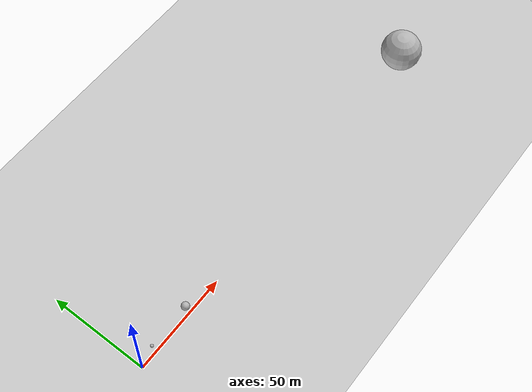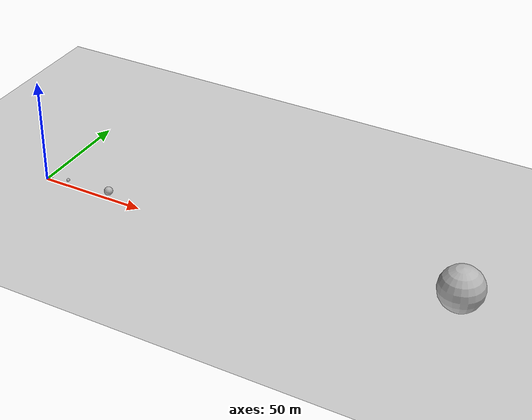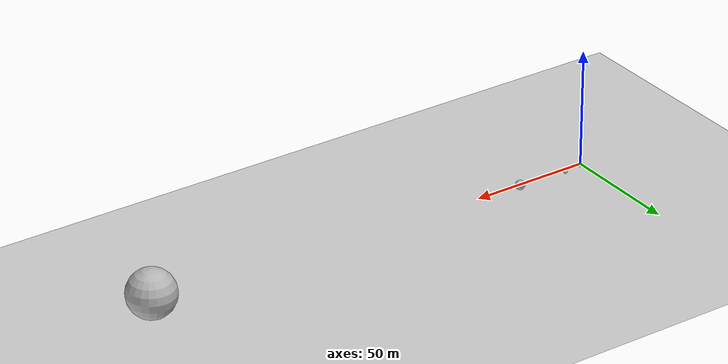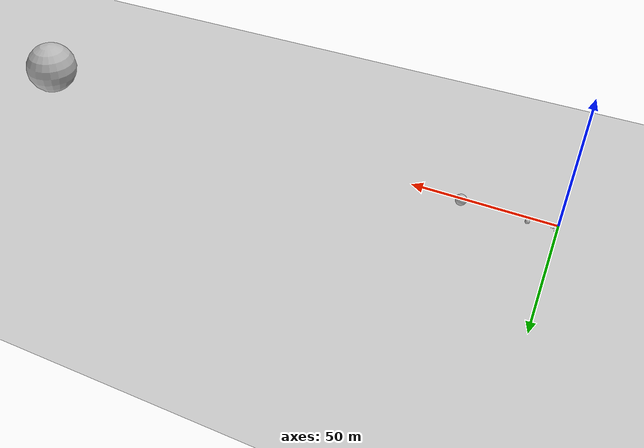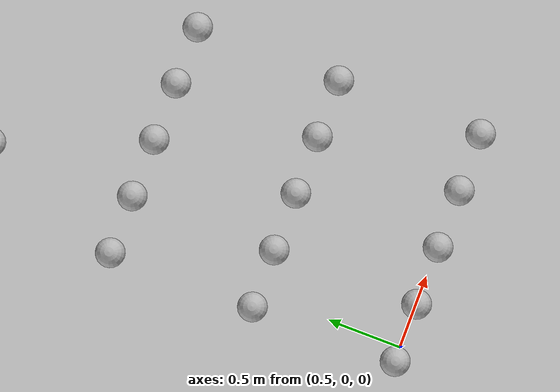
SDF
<?xml version="1.0" ?>
<!-- this file was generated using embedded ruby -->

<sdf version="1.5">
  <world name="default">
    <physics type="ode">
      <ode>
        <solver>
          <type>quick</type>
          <iters>1000</iters>
          <precon_iters>0</precon_iters>
          <sor>1.0</sor>
        </solver>
        <constraints>
          <cfm>0.000000</cfm>
          <erp>0.200000</erp>
          <contact_max_correcting_vel>1000.0</contact_max_correcting_vel>
          <contact_surface_layer>0.0</contact_surface_layer>
        </constraints>
      </ode>
    </physics>
    <gui>
      <camera name="user_camera">
        <pose>-4 1.5 1.9 0 0.17 -0.014</pose>
      </camera>
    </gui>
    <include>
      <uri>model://ground_plane</uri>
    </include>
    <include>
      <uri>model://sun</uri>
    </include>

    <model name='sphere_mass_1'>
      <allow_auto_disable>0</allow_auto_disable>
      <pose>0.4 0 0.1  0 0 0</pose>
      <link name="link">
        <inertial>
          <mass>0.41887902047863923</mass>
          <inertia>
            <ixx>0.0016755160819145573</ixx>
            <iyy>0.0016755160819145573</iyy>
            <izz>0.0016755160819145573</izz>
            <ixy>0.0</ixy>
            <ixz>0.0</ixz>
            <iyz>0.0</iyz>
          </inertia>
        </inertial>
        <collision name="collision">
          <geometry>
            <sphere>
              <radius>0.1</radius>
            </sphere>
          </geometry>
          <surface>
            <friction>
              <torsional>
                <coefficient>0.005</coefficient>
              </torsional>
            </friction>
            <contact>
              <ode>
                <kp>500000</kp>
                <max_vel>10000</max_vel>
              </ode>
            </contact>
          </surface>
        </collision>
        <visual name="visual">
          <geometry>
            <sphere>
              <radius>0.1</radius>
            </sphere>
          </geometry>
          <material>
            <script>
              <uri>file://media/materials/scripts/gazebo.material</uri>
              <name>Gazebo/CoM</name>
            </script>
          </material>
        </visual>
      </link>
    </model>

    <model name='sphere_mass_2'>
      <allow_auto_disable>0</allow_auto_disable>
      <pose>0.8 0 0.1  0 0 0</pose>
      <link name="link">
        <inertial>
          <mass>4.188790204786391</mass>
          <inertia>
            <ixx>0.01675516081914557</ixx>
            <iyy>0.01675516081914557</iyy>
            <izz>0.01675516081914557</izz>
            <ixy>0.0</ixy>
            <ixz>0.0</ixz>
            <iyz>0.0</iyz>
          </inertia>
        </inertial>
        <collision name="collision">
          <geometry>
            <sphere>
              <radius>0.1</radius>
            </sphere>
          </geometry>
          <surface>
            <friction>
              <torsional>
                <coefficient>0.005</coefficient>
              </torsional>
            </friction>
            <contact>
              <ode>
                <kp>500000</kp>
                <max_vel>10000</max_vel>
              </ode>
            </contact>
          </surface>
        </collision>
        <visual name="visual">
          <geometry>
            <sphere>
              <radius>0.1</radius>
            </sphere>
          </geometry>
          <material>
            <script>
              <uri>file://media/materials/scripts/gazebo.material</uri>
              <name>Gazebo/CoM</name>
            </script>
          </material>
        </visual>
      </link>
    </model>

    <model name='sphere_mass_3'>
      <allow_auto_disable>0</allow_auto_disable>
      <pose>1.2000000000000002 0 0.1  0 0 0</pose>
      <link name="link">
        <inertial>
          <mass>11.309733552923259</mass>
          <inertia>
            <ixx>0.045238934211693047</ixx>
            <iyy>0.045238934211693047</iyy>
            <izz>0.045238934211693047</izz>
            <ixy>0.0</ixy>
            <ixz>0.0</ixz>
            <iyz>0.0</iyz>
          </inertia>
        </inertial>
        <collision name="collision">
          <geometry>
            <sphere>
              <radius>0.1</radius>
            </sphere>
          </geometry>
          <surface>
            <friction>
              <torsional>
                <coefficient>0.005</coefficient>
              </torsional>
            </friction>
            <contact>
              <ode>
                <kp>500000</kp>
                <max_vel>10000</max_vel>
              </ode>
            </contact>
          </surface>
        </collision>
        <visual name="visual">
          <geometry>
            <sphere>
              <radius>0.1</radius>
            </sphere>
          </geometry>
          <material>
            <script>
              <uri>file://media/materials/scripts/gazebo.material</uri>
              <name>Gazebo/CoM</name>
            </script>
          </material>
        </visual>
      </link>
    </model>

    <model name='sphere_mass_4'>
      <allow_auto_disable>0</allow_auto_disable>
      <pose>1.6 0 0.1  0 0 0</pose>
      <link name="link">
        <inertial>
          <mass>20.94395102393196</mass>
          <inertia>
            <ixx>0.08377580409572787</ixx>
            <iyy>0.08377580409572787</iyy>
            <izz>0.08377580409572787</izz>
            <ixy>0.0</ixy>
            <ixz>0.0</ixz>
            <iyz>0.0</iyz>
          </inertia>
        </inertial>
        <collision name="collision">
          <geometry>
            <sphere>
              <radius>0.1</radius>
            </sphere>
          </geometry>
          <surface>
            <friction>
              <torsional>
                <coefficient>0.005</coefficient>
              </torsional>
            </friction>
            <contact>
              <ode>
                <kp>500000</kp>
                <max_vel>10000</max_vel>
              </ode>
            </contact>
          </surface>
        </collision>
        <visual name="visual">
          <geometry>
            <sphere>
              <radius>0.1</radius>
            </sphere>
          </geometry>
          <material>
            <script>
              <uri>file://media/materials/scripts/gazebo.material</uri>
              <name>Gazebo/CoM</name>
            </script>
          </material>
        </visual>
      </link>
    </model>

    <model name='sphere_mass_5'>
      <allow_auto_disable>0</allow_auto_disable>
      <pose>2.0 0 0.1  0 0 0</pose>
      <link name="link">
        <inertial>
          <mass>41.88790204786392</mass>
          <inertia>
            <ixx>0.16755160819145573</ixx>
            <iyy>0.16755160819145573</iyy>
            <izz>0.16755160819145573</izz>
            <ixy>0.0</ixy>
            <ixz>0.0</ixz>
            <iyz>0.0</iyz>
          </inertia>
        </inertial>
        <collision name="collision">
          <geometry>
            <sphere>
              <radius>0.1</radius>
            </sphere>
          </geometry>
          <surface>
            <friction>
              <torsional>
                <coefficient>0.005</coefficient>
              </torsional>
            </friction>
            <contact>
              <ode>
                <kp>500000</kp>
                <max_vel>10000</max_vel>
              </ode>
            </contact>
          </surface>
        </collision>
        <visual name="visual">
          <geometry>
            <sphere>
              <radius>0.1</radius>
            </sphere>
          </geometry>
          <material>
            <script>
              <uri>file://media/materials/scripts/gazebo.material</uri>
              <name>Gazebo/CoM</name>
            </script>
          </material>
        </visual>
      </link>
    </model>

    <model name='sphere_coefficient_1'>
      <allow_auto_disable>0</allow_auto_disable>
      <pose>0.4 1 0.1  0 0 0</pose>
      <link name="link">
        <inertial>
          <mass>11.309733552923259</mass>
          <inertia>
            <ixx>0.045238934211693047</ixx>
            <iyy>0.045238934211693047</iyy>
            <izz>0.045238934211693047</izz>
            <ixy>0.0</ixy>
            <ixz>0.0</ixz>
            <iyz>0.0</iyz>
          </inertia>
        </inertial>
        <collision name="collision">
          <geometry>
            <sphere>
              <radius>0.1</radius>
            </sphere>
          </geometry>
          <surface>
            <friction>
              <torsional>
                <coefficient>0.0</coefficient>
                <patch_radius>2.0</patch_radius>
              </torsional>
            </friction>
            <contact>
              <ode>
                <kp>500000</kp>
              </ode>
            </contact>
          </surface>
        </collision>
        <visual name="visual">
          <geometry>
            <sphere>
              <radius>0.1</radius>
            </sphere>
          </geometry>
          <material>
            <script>
              <uri>file://media/materials/scripts/gazebo.material</uri>
              <name>Gazebo/CoM</name>
            </script>
          </material>
        </visual>
      </link>
    </model>

    <model name='sphere_coefficient_2'>
      <allow_auto_disable>0</allow_auto_disable>
      <pose>0.8 1 0.1  0 0 0</pose>
      <link name="link">
        <inertial>
          <mass>11.309733552923259</mass>
          <inertia>
            <ixx>0.045238934211693047</ixx>
            <iyy>0.045238934211693047</iyy>
            <izz>0.045238934211693047</izz>
            <ixy>0.0</ixy>
            <ixz>0.0</ixz>
            <iyz>0.0</iyz>
          </inertia>
        </inertial>
        <collision name="collision">
          <geometry>
            <sphere>
              <radius>0.1</radius>
            </sphere>
          </geometry>
          <surface>
            <friction>
              <torsional>
                <coefficient>0.001</coefficient>
                <patch_radius>2.0</patch_radius>
              </torsional>
            </friction>
            <contact>
              <ode>
                <kp>500000</kp>
              </ode>
            </contact>
          </surface>
        </collision>
        <visual name="visual">
          <geometry>
            <sphere>
              <radius>0.1</radius>
            </sphere>
          </geometry>
          <material>
            <script>
              <uri>file://media/materials/scripts/gazebo.material</uri>
              <name>Gazebo/CoM</name>
            </script>
          </material>
        </visual>
      </link>
    </model>

    <model name='sphere_coefficient_3'>
      <allow_auto_disable>0</allow_auto_disable>
      <pose>1.2000000000000002 1 0.1  0 0 0</pose>
      <link name="link">
        <inertial>
          <mass>11.309733552923259</mass>
          <inertia>
            <ixx>0.045238934211693047</ixx>
            <iyy>0.045238934211693047</iyy>
            <izz>0.045238934211693047</izz>
            <ixy>0.0</ixy>
            <ixz>0.0</ixz>
            <iyz>0.0</iyz>
          </inertia>
        </inertial>
        <collision name="collision">
          <geometry>
            <sphere>
              <radius>0.1</radius>
            </sphere>
          </geometry>
          <surface>
            <friction>
              <torsional>
                <coefficient>0.005</coefficient>
                <patch_radius>2.0</patch_radius>
              </torsional>
            </friction>
            <contact>
              <ode>
                <kp>500000</kp>
              </ode>
            </contact>
          </surface>
        </collision>
        <visual name="visual">
          <geometry>
            <sphere>
              <radius>0.1</radius>
            </sphere>
          </geometry>
          <material>
            <script>
              <uri>file://media/materials/scripts/gazebo.material</uri>
              <name>Gazebo/CoM</name>
            </script>
          </material>
        </visual>
      </link>
    </model>

    <model name='sphere_coefficient_4'>
      <allow_auto_disable>0</allow_auto_disable>
      <pose>1.6 1 0.1  0 0 0</pose>
      <link name="link">
        <inertial>
          <mass>11.309733552923259</mass>
          <inertia>
            <ixx>0.045238934211693047</ixx>
            <iyy>0.045238934211693047</iyy>
            <izz>0.045238934211693047</izz>
            <ixy>0.0</ixy>
            <ixz>0.0</ixz>
            <iyz>0.0</iyz>
          </inertia>
        </inertial>
        <collision name="collision">
          <geometry>
            <sphere>
              <radius>0.1</radius>
            </sphere>
          </geometry>
          <surface>
            <friction>
              <torsional>
                <coefficient>0.01</coefficient>
                <patch_radius>2.0</patch_radius>
              </torsional>
            </friction>
            <contact>
              <ode>
                <kp>500000</kp>
              </ode>
            </contact>
          </surface>
        </collision>
        <visual name="visual">
          <geometry>
            <sphere>
              <radius>0.1</radius>
            </sphere>
          </geometry>
          <material>
            <script>
              <uri>file://media/materials/scripts/gazebo.material</uri>
              <name>Gazebo/CoM</name>
            </script>
          </material>
        </visual>
      </link>
    </model>

    <model name='sphere_coefficient_5'>
      <allow_auto_disable>0</allow_auto_disable>
      <pose>2.0 1 0.1  0 0 0</pose>
      <link name="link">
        <inertial>
          <mass>11.309733552923259</mass>
          <inertia>
            <ixx>0.045238934211693047</ixx>
            <iyy>0.045238934211693047</iyy>
            <izz>0.045238934211693047</izz>
            <ixy>0.0</ixy>
            <ixz>0.0</ixz>
            <iyz>0.0</iyz>
          </inertia>
        </inertial>
        <collision name="collision">
          <geometry>
            <sphere>
              <radius>0.1</radius>
            </sphere>
          </geometry>
          <surface>
            <friction>
              <torsional>
                <coefficient>1.0</coefficient>
                <patch_radius>2.0</patch_radius>
              </torsional>
            </friction>
            <contact>
              <ode>
                <kp>500000</kp>
              </ode>
            </contact>
          </surface>
        </collision>
        <visual name="visual">
          <geometry>
            <sphere>
              <radius>0.1</radius>
            </sphere>
          </geometry>
          <material>
            <script>
              <uri>file://media/materials/scripts/gazebo.material</uri>
              <name>Gazebo/CoM</name>
            </script>
          </material>
        </visual>
      </link>
    </model>

    <model name='sphere_patch_1'>
      <allow_auto_disable>0</allow_auto_disable>
      <pose>0.4 2 0.1  0 0 0</pose>
      <link name="link">
        <inertial>
          <mass>11.309733552923259</mass>
          <inertia>
            <ixx>0.045238934211693047</ixx>
            <iyy>0.045238934211693047</iyy>
            <izz>0.045238934211693047</izz>
            <ixy>0.0</ixy>
            <ixz>0.0</ixz>
            <iyz>0.0</iyz>
          </inertia>
        </inertial>
        <collision name="collision">
          <geometry>
            <sphere>
              <radius>0.1</radius>
            </sphere>
          </geometry>
          <surface>
            <friction>
              <torsional>
                <coefficient>0.005</coefficient>
                <patch_radius>0.0</patch_radius>
                <use_patch_radius>true</use_patch_radius>
              </torsional>
            </friction>
            <contact>
              <ode>
                <kp>500000</kp>
              </ode>
            </contact>
          </surface>
        </collision>
        <visual name="visual">
          <geometry>
            <sphere>
              <radius>0.1</radius>
            </sphere>
          </geometry>
          <material>
            <script>
              <uri>file://media/materials/scripts/gazebo.material</uri>
              <name>Gazebo/CoM</name>
            </script>
          </material>
        </visual>
      </link>
    </model>

    <model name='sphere_patch_2'>
      <allow_auto_disable>0</allow_auto_disable>
      <pose>0.8 2 0.1  0 0 0</pose>
      <link name="link">
        <inertial>
          <mass>11.309733552923259</mass>
          <inertia>
            <ixx>0.045238934211693047</ixx>
            <iyy>0.045238934211693047</iyy>
            <izz>0.045238934211693047</izz>
            <ixy>0.0</ixy>
            <ixz>0.0</ixz>
            <iyz>0.0</iyz>
          </inertia>
        </inertial>
        <collision name="collision">
          <geometry>
            <sphere>
              <radius>0.1</radius>
            </sphere>
          </geometry>
          <surface>
            <friction>
              <torsional>
                <coefficient>0.005</coefficient>
                <patch_radius>0.1</patch_radius>
                <use_patch_radius>true</use_patch_radius>
              </torsional>
            </friction>
            <contact>
              <ode>
                <kp>500000</kp>
              </ode>
            </contact>
          </surface>
        </collision>
        <visual name="visual">
          <geometry>
            <sphere>
              <radius>0.1</radius>
            </sphere>
          </geometry>
          <material>
            <script>
              <uri>file://media/materials/scripts/gazebo.material</uri>
              <name>Gazebo/CoM</name>
            </script>
          </material>
        </visual>
      </link>
    </model>

    <model name='sphere_patch_3'>
      <allow_auto_disable>0</allow_auto_disable>
      <pose>1.2000000000000002 2 0.1  0 0 0</pose>
      <link name="link">
        <inertial>
          <mass>11.309733552923259</mass>
          <inertia>
            <ixx>0.045238934211693047</ixx>
            <iyy>0.045238934211693047</iyy>
            <izz>0.045238934211693047</izz>
            <ixy>0.0</ixy>
            <ixz>0.0</ixz>
            <iyz>0.0</iyz>
          </inertia>
        </inertial>
        <collision name="collision">
          <geometry>
            <sphere>
              <radius>0.1</radius>
            </sphere>
          </geometry>
          <surface>
            <friction>
              <torsional>
                <coefficient>0.005</coefficient>
                <patch_radius>2.0</patch_radius>
                <use_patch_radius>true</use_patch_radius>
              </torsional>
            </friction>
            <contact>
              <ode>
                <kp>500000</kp>
              </ode>
            </contact>
          </surface>
        </collision>
        <visual name="visual">
          <geometry>
            <sphere>
              <radius>0.1</radius>
            </sphere>
          </geometry>
          <material>
            <script>
              <uri>file://media/materials/scripts/gazebo.material</uri>
              <name>Gazebo/CoM</name>
            </script>
          </material>
        </visual>
      </link>
    </model>

    <model name='sphere_patch_4'>
      <allow_auto_disable>0</allow_auto_disable>
      <pose>1.6 2 0.1  0 0 0</pose>
      <link name="link">
        <inertial>
          <mass>11.309733552923259</mass>
          <inertia>
            <ixx>0.045238934211693047</ixx>
            <iyy>0.045238934211693047</iyy>
            <izz>0.045238934211693047</izz>
            <ixy>0.0</ixy>
            <ixz>0.0</ixz>
            <iyz>0.0</iyz>
          </inertia>
        </inertial>
        <collision name="collision">
          <geometry>
            <sphere>
              <radius>0.1</radius>
            </sphere>
          </geometry>
          <surface>
            <friction>
              <torsional>
                <coefficient>0.005</coefficient>
                <patch_radius>5.0</patch_radius>
                <use_patch_radius>true</use_patch_radius>
              </torsional>
            </friction>
            <contact>
              <ode>
                <kp>500000</kp>
              </ode>
            </contact>
          </surface>
        </collision>
        <visual name="visual">
          <geometry>
            <sphere>
              <radius>0.1</radius>
            </sphere>
          </geometry>
          <material>
            <script>
              <uri>file://media/materials/scripts/gazebo.material</uri>
              <name>Gazebo/CoM</name>
            </script>
          </material>
        </visual>
      </link>
    </model>

    <model name='sphere_patch_5'>
      <allow_auto_disable>0</allow_auto_disable>
      <pose>2.0 2 0.1  0 0 0</pose>
      <link name="link">
        <inertial>
          <mass>11.309733552923259</mass>
          <inertia>
            <ixx>0.045238934211693047</ixx>
            <iyy>0.045238934211693047</iyy>
            <izz>0.045238934211693047</izz>
            <ixy>0.0</ixy>
            <ixz>0.0</ixz>
            <iyz>0.0</iyz>
          </inertia>
        </inertial>
        <collision name="collision">
          <geometry>
            <sphere>
              <radius>0.1</radius>
            </sphere>
          </geometry>
          <surface>
            <friction>
              <torsional>
                <coefficient>0.005</coefficient>
                <patch_radius>10.0</patch_radius>
                <use_patch_radius>true</use_patch_radius>
              </torsional>
            </friction>
            <contact>
              <ode>
                <kp>500000</kp>
              </ode>
            </contact>
          </surface>
        </collision>
        <visual name="visual">
          <geometry>
            <sphere>
              <radius>0.1</radius>
            </sphere>
          </geometry>
          <material>
            <script>
              <uri>file://media/materials/scripts/gazebo.material</uri>
              <name>Gazebo/CoM</name>
            </script>
          </material>
        </visual>
      </link>
    </model>

    <model name='sphere_radius_1'>
      <allow_auto_disable>0</allow_auto_disable>
      <pose>0.04 3 0.01  0 0 0</pose>
      <link name="link">
        <inertial>
          <mass>11.309733552923259</mass>
          <inertia>
            <ixx>0.045238934211693047</ixx>
            <iyy>0.045238934211693047</iyy>
            <izz>0.045238934211693047</izz>
            <ixy>0.0</ixy>
            <ixz>0.0</ixz>
            <iyz>0.0</iyz>
          </inertia>
        </inertial>
        <collision name="collision">
          <geometry>
            <sphere>
              <radius>0.01</radius>
            </sphere>
          </geometry>
          <surface>
            <friction>
              <torsional>
                <coefficient>0.005</coefficient>
                <surface_radius>0.01</surface_radius>
                <use_patch_radius>false</use_patch_radius>
              </torsional>
            </friction>
            <contact>
              <ode>
                <kp>500000</kp>
              </ode>
            </contact>
          </surface>
        </collision>
        <visual name="visual">
          <geometry>
            <sphere>
              <radius>0.01</radius>
            </sphere>
          </geometry>
          <material>
            <script>
              <uri>file://media/materials/scripts/gazebo.material</uri>
              <name>Gazebo/CoM</name>
            </script>
          </material>
        </visual>
      </link>
    </model>

    <model name='sphere_radius_2'>
      <allow_auto_disable>0</allow_auto_disable>
      <pose>0.8 3 0.1  0 0 0</pose>
      <link name="link">
        <inertial>
          <mass>11.309733552923259</mass>
          <inertia>
            <ixx>0.045238934211693047</ixx>
            <iyy>0.045238934211693047</iyy>
            <izz>0.045238934211693047</izz>
            <ixy>0.0</ixy>
            <ixz>0.0</ixz>
            <iyz>0.0</iyz>
          </inertia>
        </inertial>
        <collision name="collision">
          <geometry>
            <sphere>
              <radius>0.1</radius>
            </sphere>
          </geometry>
          <surface>
            <friction>
              <torsional>
                <coefficient>0.005</coefficient>
                <surface_radius>0.1</surface_radius>
                <use_patch_radius>false</use_patch_radius>
              </torsional>
            </friction>
            <contact>
              <ode>
                <kp>500000</kp>
              </ode>
            </contact>
          </surface>
        </collision>
        <visual name="visual">
          <geometry>
            <sphere>
              <radius>0.1</radius>
            </sphere>
          </geometry>
          <material>
            <script>
              <uri>file://media/materials/scripts/gazebo.material</uri>
              <name>Gazebo/CoM</name>
            </script>
          </material>
        </visual>
      </link>
    </model>

    <model name='sphere_radius_3'>
      <allow_auto_disable>0</allow_auto_disable>
      <pose>9.600000000000001 3 0.8  0 0 0</pose>
      <link name="link">
        <inertial>
          <mass>11.309733552923259</mass>
          <inertia>
            <ixx>0.045238934211693047</ixx>
            <iyy>0.045238934211693047</iyy>
            <izz>0.045238934211693047</izz>
            <ixy>0.0</ixy>
            <ixz>0.0</ixz>
            <iyz>0.0</iyz>
          </inertia>
        </inertial>
        <collision name="collision">
          <geometry>
            <sphere>
              <radius>0.8</radius>
            </sphere>
          </geometry>
          <surface>
            <friction>
              <torsional>
                <coefficient>0.005</coefficient>
                <surface_radius>0.8</surface_radius>
                <use_patch_radius>false</use_patch_radius>
              </torsional>
            </friction>
            <contact>
              <ode>
                <kp>500000</kp>
              </ode>
            </contact>
          </surface>
        </collision>
        <visual name="visual">
          <geometry>
            <sphere>
              <radius>0.8</radius>
            </sphere>
          </geometry>
          <material>
            <script>
              <uri>file://media/materials/scripts/gazebo.material</uri>
              <name>Gazebo/CoM</name>
            </script>
          </material>
        </visual>
      </link>
    </model>

    <model name='sphere_radius_4'>
      <allow_auto_disable>0</allow_auto_disable>
      <pose>32.0 3 2.0  0 0 0</pose>
      <link name="link">
        <inertial>
          <mass>11.309733552923259</mass>
          <inertia>
            <ixx>0.045238934211693047</ixx>
            <iyy>0.045238934211693047</iyy>
            <izz>0.045238934211693047</izz>
            <ixy>0.0</ixy>
            <ixz>0.0</ixz>
            <iyz>0.0</iyz>
          </inertia>
        </inertial>
        <collision name="collision">
          <geometry>
            <sphere>
              <radius>2.0</radius>
            </sphere>
          </geometry>
          <surface>
            <friction>
              <torsional>
                <coefficient>0.005</coefficient>
                <surface_radius>2.0</surface_radius>
                <use_patch_radius>false</use_patch_radius>
              </torsional>
            </friction>
            <contact>
              <ode>
                <kp>500000</kp>
              </ode>
            </contact>
          </surface>
        </collision>
        <visual name="visual">
          <geometry>
            <sphere>
              <radius>2.0</radius>
            </sphere>
          </geometry>
          <material>
            <script>
              <uri>file://media/materials/scripts/gazebo.material</uri>
              <name>Gazebo/CoM</name>
            </script>
          </material>
        </visual>
      </link>
    </model>

    <model name='sphere_radius_5'>
      <allow_auto_disable>0</allow_auto_disable>
      <pose>200.0 3 10.0  0 0 0</pose>
      <link name="link">
        <inertial>
          <mass>11.309733552923259</mass>
          <inertia>
            <ixx>0.045238934211693047</ixx>
            <iyy>0.045238934211693047</iyy>
            <izz>0.045238934211693047</izz>
            <ixy>0.0</ixy>
            <ixz>0.0</ixz>
            <iyz>0.0</iyz>
          </inertia>
        </inertial>
        <collision name="collision">
          <geometry>
            <sphere>
              <radius>10.0</radius>
            </sphere>
          </geometry>
          <surface>
            <friction>
              <torsional>
                <coefficient>0.005</coefficient>
                <surface_radius>10.0</surface_radius>
                <use_patch_radius>false</use_patch_radius>
              </torsional>
            </friction>
            <contact>
              <ode>
                <kp>500000</kp>
              </ode>
            </contact>
          </surface>
        </collision>
        <visual name="visual">
          <geometry>
            <sphere>
              <radius>10.0</radius>
            </sphere>
          </geometry>
          <material>
            <script>
              <uri>file://media/materials/scripts/gazebo.material</uri>
              <name>Gazebo/CoM</name>
            </script>
          </material>
        </visual>
      </link>
    </model>

  </world>
</sdf>
